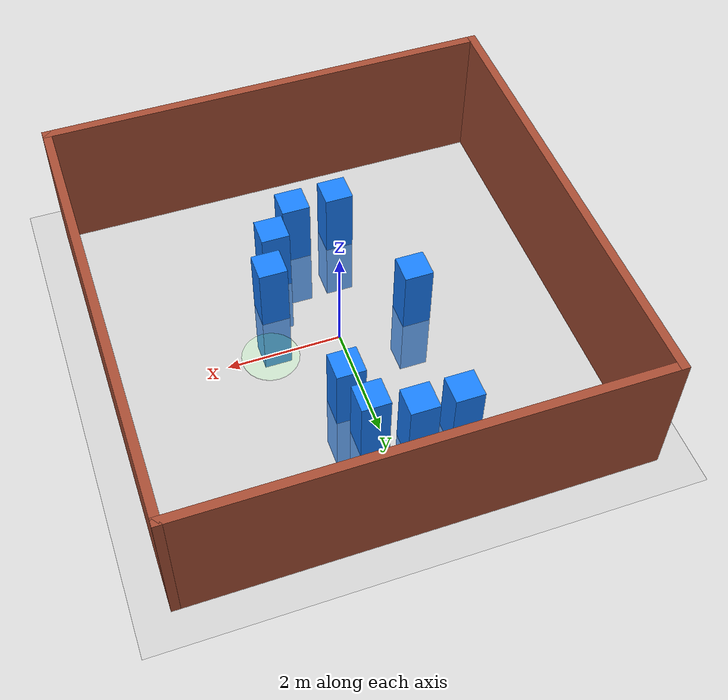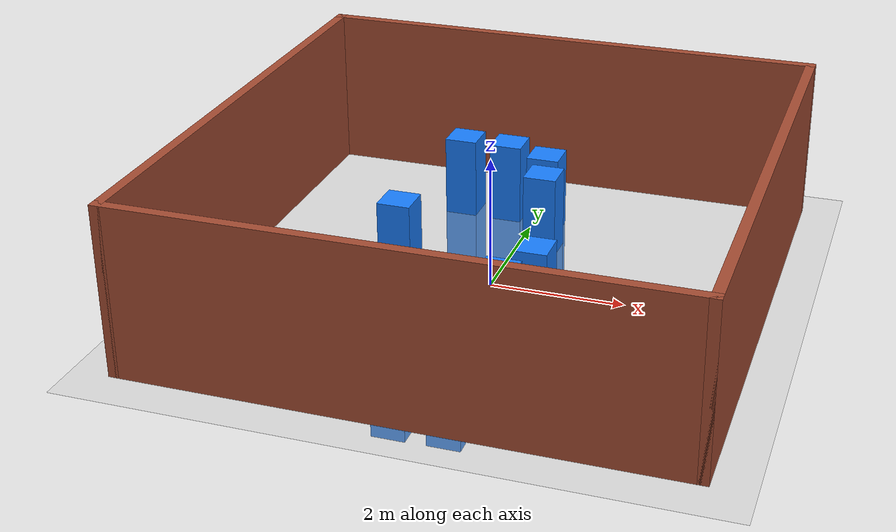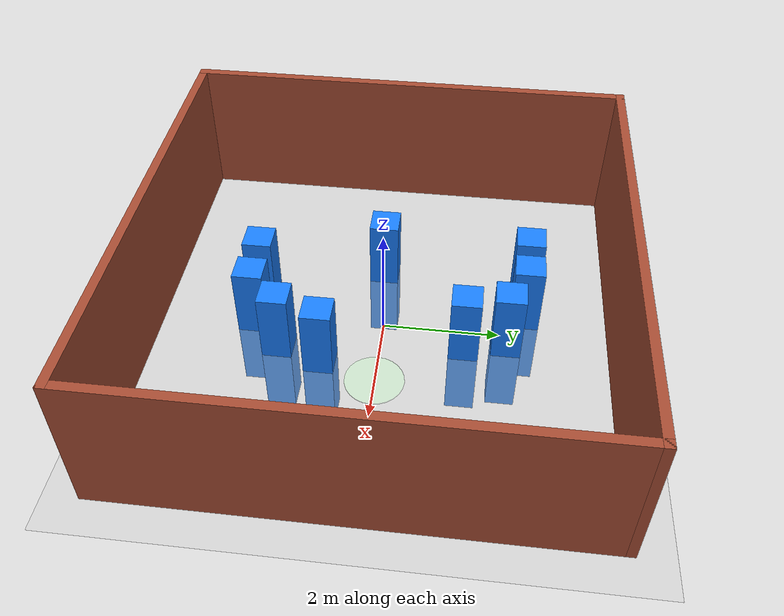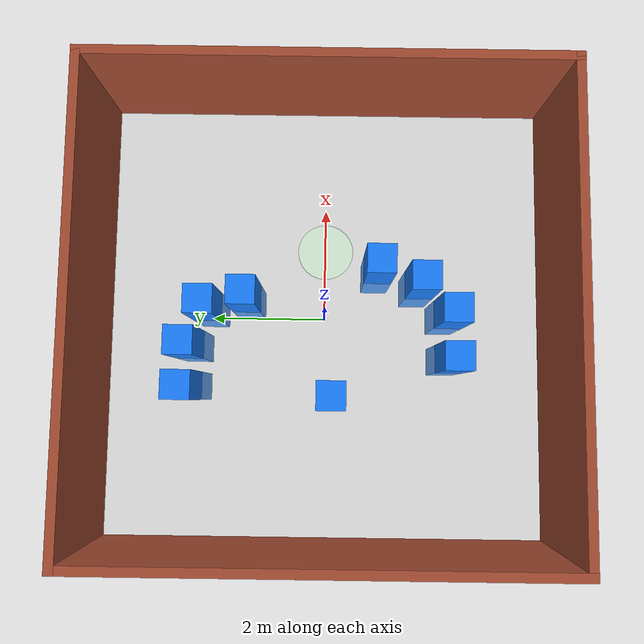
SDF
<?xml version="1.0" ?>
<sdf version='1.6'>
  <world name='default'>
    <light name='sun' type='directional'>
      <cast_shadows>1</cast_shadows>
      <pose frame=''>0 0 10 0 -0 0</pose>
      <diffuse>0.8 0.8 0.8 1</diffuse>
      <specular>0.2 0.2 0.2 1</specular>
      <attenuation>
        <range>1000</range>
        <constant>0.9</constant>
        <linear>0.01</linear>
        <quadratic>0.001</quadratic>
      </attenuation>
      <direction>-0.5 0.1 -0.9</direction>
    </light>
    <model name='ground_plane'>
      <static>1</static>
      <link name='link'>
        <collision name='collision'>
          <geometry>
            <plane>
              <normal>0 0 1</normal>
              <size>100 100</size>
            </plane>
          </geometry>
          <surface>
            <contact>
              <collide_bitmask>65535</collide_bitmask>
              <ode/>
            </contact>
            <friction>
              <ode>
                <mu>100</mu>
                <mu2>50</mu2>
              </ode>
              <torsional>
                <ode/>
              </torsional>
            </friction>
            <bounce/>
          </surface>
          <max_contacts>10</max_contacts>
        </collision>
        <visual name='visual'>
          <cast_shadows>0</cast_shadows>
          <geometry>
            <plane>
              <normal>0 0 1</normal>
              <size>100 100</size>
            </plane>
          </geometry>
          <material>
            <script>
              <uri>file://media/materials/scripts/gazebo.material</uri>
              <name>Gazebo/Grey</name>
            </script>
          </material>
        </visual>
        <self_collide>0</self_collide>
        <enable_wind>0</enable_wind>
        <kinematic>0</kinematic>
      </link>
    </model>
    <gravity>0 0 -9.8</gravity>
    <magnetic_field>6e-06 2.3e-05 -4.2e-05</magnetic_field>
    <atmosphere type='adiabatic'/>
    <physics name='default_physics' default='0' type='ode'>
      <max_step_size>0.001</max_step_size>
      <real_time_factor>1</real_time_factor>
      <real_time_update_rate>1000</real_time_update_rate>
    </physics>
    <scene>
      <ambient>0.4 0.4 0.4 1</ambient>
      <background>0.7 0.7 0.7 1</background>
      <shadows>1</shadows>
    </scene>
    <wind/>
    <spherical_coordinates>
      <surface_model>EARTH_WGS84</surface_model>
      <latitude_deg>0</latitude_deg>
      <longitude_deg>0</longitude_deg>
      <elevation>0</elevation>
      <heading_deg>0</heading_deg>
    </spherical_coordinates>
    <model name='benchmark2'>
      <pose frame=''>0 0 0 0 -0 0</pose>
      <link name='Wall_0'>
        <collision name='Wall_0_Collision'>
          <geometry>
            <box>
              <size>8 0.15 2.5</size>
            </box>
          </geometry>
          <pose frame=''>0 0 1.25 0 -0 0</pose>
          <max_contacts>10</max_contacts>
          <surface>
            <contact>
              <ode/>
            </contact>
            <bounce/>
            <friction>
              <torsional>
                <ode/>
              </torsional>
              <ode/>
            </friction>
          </surface>
        </collision>
        <visual name='Wall_0_Visual'>
          <pose frame=''>0 0 1.25 0 -0 0</pose>
          <geometry>
            <box>
              <size>8 0.15 2.5</size>
            </box>
          </geometry>
          <material>
            <script>
              <uri>file://media/materials/scripts/gazebo.material</uri>
              <name>Gazebo/Bricks</name>
            </script>
            <ambient>1 1 1 1</ambient>
          </material>
          <meta>
            <layer>0</layer>
          </meta>
        </visual>
        <pose frame=''>-3.925 0 0 0 -0 -1.5708</pose>
        <self_collide>0</self_collide>
        <enable_wind>0</enable_wind>
        <kinematic>0</kinematic>
      </link>
      <link name='Wall_1'>
        <collision name='Wall_1_Collision'>
          <geometry>
            <box>
              <size>8 0.15 2.5</size>
            </box>
          </geometry>
          <pose frame=''>0 0 1.25 0 -0 0</pose>
          <max_contacts>10</max_contacts>
          <surface>
            <contact>
              <ode/>
            </contact>
            <bounce/>
            <friction>
              <torsional>
                <ode/>
              </torsional>
              <ode/>
            </friction>
          </surface>
        </collision>
        <visual name='Wall_1_Visual'>
          <pose frame=''>0 0 1.25 0 -0 0</pose>
          <geometry>
            <box>
              <size>8 0.15 2.5</size>
            </box>
          </geometry>
          <material>
            <script>
              <uri>file://media/materials/scripts/gazebo.material</uri>
              <name>Gazebo/Bricks</name>
            </script>
            <ambient>1 1 1 1</ambient>
          </material>
          <meta>
            <layer>0</layer>
          </meta>
        </visual>
        <pose frame=''>0 -3.925 0 0 -0 0</pose>
        <self_collide>0</self_collide>
        <enable_wind>0</enable_wind>
        <kinematic>0</kinematic>
      </link>
      <link name='Wall_2'>
        <collision name='Wall_2_Collision'>
          <geometry>
            <box>
              <size>8 0.15 2.5</size>
            </box>
          </geometry>
          <pose frame=''>0 0 1.25 0 -0 0</pose>
          <max_contacts>10</max_contacts>
          <surface>
            <contact>
              <ode/>
            </contact>
            <bounce/>
            <friction>
              <torsional>
                <ode/>
              </torsional>
              <ode/>
            </friction>
          </surface>
        </collision>
        <visual name='Wall_2_Visual'>
          <pose frame=''>0 0 1.25 0 -0 0</pose>
          <geometry>
            <box>
              <size>8 0.15 2.5</size>
            </box>
          </geometry>
          <material>
            <script>
              <uri>file://media/materials/scripts/gazebo.material</uri>
              <name>Gazebo/Bricks</name>
            </script>
            <ambient>1 1 1 1</ambient>
          </material>
          <meta>
            <layer>0</layer>
          </meta>
        </visual>
        <pose frame=''>3.925 0 0 0 -0 1.5708</pose>
        <self_collide>0</self_collide>
        <enable_wind>0</enable_wind>
        <kinematic>0</kinematic>
      </link>
      <link name='Wall_3'>
        <collision name='Wall_3_Collision'>
          <geometry>
            <box>
              <size>8 0.15 2.5</size>
            </box>
          </geometry>
          <pose frame=''>0 0 1.25 0 -0 0</pose>
          <max_contacts>10</max_contacts>
          <surface>
            <contact>
              <ode/>
            </contact>
            <bounce/>
            <friction>
              <torsional>
                <ode/>
              </torsional>
              <ode/>
            </friction>
          </surface>
        </collision>
        <visual name='Wall_3_Visual'>
          <pose frame=''>0 0 1.25 0 -0 0</pose>
          <geometry>
            <box>
              <size>8 0.15 2.5</size>
            </box>
          </geometry>
          <material>
            <script>
              <uri>file://media/materials/scripts/gazebo.material</uri>
              <name>Gazebo/Bricks</name>
            </script>
            <ambient>1 1 1 1</ambient>
          </material>
          <meta>
            <layer>0</layer>
          </meta>
        </visual>
        <pose frame=''>0 3.925 0 0 -0 3.14159</pose>
        <self_collide>0</self_collide>
        <enable_wind>0</enable_wind>
        <kinematic>0</kinematic>
      </link>
      <static>1</static>
    </model>
    <model name='unit_box'>
      <pose frame=''>-1.21492 2.44747 0 0 -0 0</pose>
      <link name='link'>
        <inertial>
          <mass>1</mass>
          <inertia>
            <ixx>0.166667</ixx>
            <ixy>0</ixy>
            <ixz>0</ixz>
            <iyy>0.166667</iyy>
            <iyz>0</iyz>
            <izz>0.166667</izz>
          </inertia>
          <pose frame=''>0 0 0 0 -0 0</pose>
        </inertial>
        <self_collide>0</self_collide>
        <enable_wind>0</enable_wind>
        <kinematic>0</kinematic>
        <pose frame=''>0 0 0 0 -0 0</pose>
        <gravity>1</gravity>
        <visual name='visual'>
          <geometry>
            <box>
              <size>0.5 0.5 2.5</size>
            </box>
          </geometry>
          <material>
            <script>
              <name>Gazebo/Grey</name>
              <uri>file://media/materials/scripts/gazebo.material</uri>
            </script>
            <shader type='pixel'>
              <normal_map>__default__</normal_map>
            </shader>
            <ambient>0.3 0.3 1 1</ambient>
            <diffuse>0.1 0.5 1 1</diffuse>
            <specular>0.1 0.1 1 1</specular>
            <emissive>0.1 0.1 1 1</emissive>
          </material>
          <pose frame=''>0 0 0 0 -0 0</pose>
          <transparency>0</transparency>
          <cast_shadows>1</cast_shadows>
        </visual>
        <collision name='collision'>
          <laser_retro>0</laser_retro>
          <max_contacts>10</max_contacts>
          <pose frame=''>0 0 0 0 -0 0</pose>
          <geometry>
            <box>
              <size>0.5 0.5 2.5</size>
            </box>
          </geometry>
          <surface>
            <friction>
              <ode>
                <mu>1</mu>
                <mu2>1</mu2>
                <fdir1>0 0 0</fdir1>
                <slip1>0</slip1>
                <slip2>0</slip2>
              </ode>
              <torsional>
                <coefficient>1</coefficient>
                <patch_radius>0</patch_radius>
                <surface_radius>0</surface_radius>
                <use_patch_radius>1</use_patch_radius>
                <ode>
                  <slip>0</slip>
                </ode>
              </torsional>
            </friction>
            <bounce>
              <restitution_coefficient>0</restitution_coefficient>
              <threshold>1e+06</threshold>
            </bounce>
            <contact>
              <collide_without_contact>0</collide_without_contact>
              <collide_without_contact_bitmask>1</collide_without_contact_bitmask>
              <collide_bitmask>1</collide_bitmask>
              <ode>
                <soft_cfm>0</soft_cfm>
                <soft_erp>0.2</soft_erp>
                <kp>1e+13</kp>
                <kd>1</kd>
                <max_vel>0.01</max_vel>
                <min_depth>0</min_depth>
              </ode>
              <bullet>
                <split_impulse>1</split_impulse>
                <split_impulse_penetration_threshold>-0.01</split_impulse_penetration_threshold>
                <soft_cfm>0</soft_cfm>
                <soft_erp>0.2</soft_erp>
                <kp>1e+13</kp>
                <kd>1</kd>
              </bullet>
            </contact>
          </surface>
        </collision>
      </link>
      <static>0</static>
      <allow_auto_disable>1</allow_auto_disable>
      <pose frame=''>-1.21492 1.94747 0 0 -0 0</pose>
    </model>
    <model name='unit_box_clone'>
      <pose frame=''>-0.474327 2.43137 0 0 -0 0</pose>
      <link name='link'>
        <inertial>
          <mass>1</mass>
          <inertia>
            <ixx>0.166667</ixx>
            <ixy>0</ixy>
            <ixz>0</ixz>
            <iyy>0.166667</iyy>
            <iyz>0</iyz>
            <izz>0.166667</izz>
          </inertia>
          <pose frame=''>0 0 0 0 -0 0</pose>
        </inertial>
        <self_collide>0</self_collide>
        <enable_wind>0</enable_wind>
        <kinematic>0</kinematic>
        <pose frame=''>0 0 0 0 -0 0</pose>
        <gravity>1</gravity>
        <visual name='visual'>
          <geometry>
            <box>
              <size>0.5 0.5 2.5</size>
            </box>
          </geometry>
          <material>
            <script>
              <name>Gazebo/Grey</name>
              <uri>file://media/materials/scripts/gazebo.material</uri>
            </script>
            <shader type='pixel'>
              <normal_map>__default__</normal_map>
            </shader>
            <ambient>0.3 0.3 1 1</ambient>
            <diffuse>0.1 0.5 1 1</diffuse>
            <specular>0.1 0.1 1 1</specular>
            <emissive>0.1 0.1 1 1</emissive>
          </material>
          <pose frame=''>0 0 0 0 -0 0</pose>
          <transparency>0</transparency>
          <cast_shadows>1</cast_shadows>
        </visual>
        <collision name='collision'>
          <laser_retro>0</laser_retro>
          <max_contacts>10</max_contacts>
          <pose frame=''>0 0 0 0 -0 0</pose>
          <geometry>
            <box>
              <size>0.5 0.5 2.5</size>
            </box>
          </geometry>
          <surface>
            <friction>
              <ode>
                <mu>1</mu>
                <mu2>1</mu2>
                <fdir1>0 0 0</fdir1>
                <slip1>0</slip1>
                <slip2>0</slip2>
              </ode>
              <torsional>
                <coefficient>1</coefficient>
                <patch_radius>0</patch_radius>
                <surface_radius>0</surface_radius>
                <use_patch_radius>1</use_patch_radius>
                <ode>
                  <slip>0</slip>
                </ode>
              </torsional>
            </friction>
            <bounce>
              <restitution_coefficient>0</restitution_coefficient>
              <threshold>1e+06</threshold>
            </bounce>
            <contact>
              <collide_without_contact>0</collide_without_contact>
              <collide_without_contact_bitmask>1</collide_without_contact_bitmask>
              <collide_bitmask>1</collide_bitmask>
              <ode>
                <soft_cfm>0</soft_cfm>
                <soft_erp>0.2</soft_erp>
                <kp>1e+13</kp>
                <kd>1</kd>
                <max_vel>0.01</max_vel>
                <min_depth>0</min_depth>
              </ode>
              <bullet>
                <split_impulse>1</split_impulse>
                <split_impulse_penetration_threshold>-0.01</split_impulse_penetration_threshold>
                <soft_cfm>0</soft_cfm>
                <soft_erp>0.2</soft_erp>
                <kp>1e+13</kp>
                <kd>1</kd>
              </bullet>
            </contact>
          </surface>
        </collision>
      </link>
      <static>0</static>
      <allow_auto_disable>1</allow_auto_disable>
      <pose frame=''>-0.474327 1.93137 0 0 -0 0</pose>
    </model>
    <model name='unit_box_clone_0'>
      <pose frame=''>0.217968 2.12547 0 0 -0 0</pose>
      <link name='link'>
        <inertial>
          <mass>1</mass>
          <inertia>
            <ixx>0.166667</ixx>
            <ixy>0</ixy>
            <ixz>0</ixz>
            <iyy>0.166667</iyy>
            <iyz>0</iyz>
            <izz>0.166667</izz>
          </inertia>
          <pose frame=''>0 0 0 0 -0 0</pose>
        </inertial>
        <self_collide>0</self_collide>
        <enable_wind>0</enable_wind>
        <kinematic>0</kinematic>
        <pose frame=''>0 0 0 0 -0 0</pose>
        <gravity>1</gravity>
        <visual name='visual'>
          <geometry>
            <box>
              <size>0.5 0.5 2.5</size>
            </box>
          </geometry>
          <material>
            <script>
              <name>Gazebo/Grey</name>
              <uri>file://media/materials/scripts/gazebo.material</uri>
            </script>
            <shader type='pixel'>
              <normal_map>__default__</normal_map>
            </shader>
            <ambient>0.3 0.3 1 1</ambient>
            <diffuse>0.1 0.5 1 1</diffuse>
            <specular>0.1 0.1 1 1</specular>
            <emissive>0.1 0.1 1 1</emissive>
          </material>
          <pose frame=''>0 0 0 0 -0 0</pose>
          <transparency>0</transparency>
          <cast_shadows>1</cast_shadows>
        </visual>
        <collision name='collision'>
          <laser_retro>0</laser_retro>
          <max_contacts>10</max_contacts>
          <pose frame=''>0 0 0 0 -0 0</pose>
          <geometry>
            <box>
              <size>0.5 0.5 2.5</size>
            </box>
          </geometry>
          <surface>
            <friction>
              <ode>
                <mu>1</mu>
                <mu2>1</mu2>
                <fdir1>0 0 0</fdir1>
                <slip1>0</slip1>
                <slip2>0</slip2>
              </ode>
              <torsional>
                <coefficient>1</coefficient>
                <patch_radius>0</patch_radius>
                <surface_radius>0</surface_radius>
                <use_patch_radius>1</use_patch_radius>
                <ode>
                  <slip>0</slip>
                </ode>
              </torsional>
            </friction>
            <bounce>
              <restitution_coefficient>0</restitution_coefficient>
              <threshold>1e+06</threshold>
            </bounce>
            <contact>
              <collide_without_contact>0</collide_without_contact>
              <collide_without_contact_bitmask>1</collide_without_contact_bitmask>
              <collide_bitmask>1</collide_bitmask>
              <ode>
                <soft_cfm>0</soft_cfm>
                <soft_erp>0.2</soft_erp>
                <kp>1e+13</kp>
                <kd>1</kd>
                <max_vel>0.01</max_vel>
                <min_depth>0</min_depth>
              </ode>
              <bullet>
                <split_impulse>1</split_impulse>
                <split_impulse_penetration_threshold>-0.01</split_impulse_penetration_threshold>
                <soft_cfm>0</soft_cfm>
                <soft_erp>0.2</soft_erp>
                <kp>1e+13</kp>
                <kd>1</kd>
              </bullet>
            </contact>
          </surface>
        </collision>
      </link>
      <static>0</static>
      <allow_auto_disable>1</allow_auto_disable>
      <pose frame=''>0.217968 1.62547 0 0 -0 0</pose>
    </model>
    <model name='unit_box_clone_1'>
      <pose frame=''>0.378967 1.417073 0 0 -0 0</pose>
      <link name='link'>
        <inertial>
          <mass>1</mass>
          <inertia>
            <ixx>0.166667</ixx>
            <ixy>0</ixy>
            <ixz>0</ixz>
            <iyy>0.166667</iyy>
            <iyz>0</iyz>
            <izz>0.166667</izz>
          </inertia>
          <pose frame=''>0 0 0 0 -0 0</pose>
        </inertial>
        <self_collide>0</self_collide>
        <enable_wind>0</enable_wind>
        <kinematic>0</kinematic>
        <pose frame=''>0 0 0 0 -0 0</pose>
        <gravity>1</gravity>
        <visual name='visual'>
          <geometry>
            <box>
              <size>0.5 0.5 2.5</size>
            </box>
          </geometry>
          <material>
            <script>
              <name>Gazebo/Grey</name>
              <uri>file://media/materials/scripts/gazebo.material</uri>
            </script>
            <shader type='pixel'>
              <normal_map>__default__</normal_map>
            </shader>
            <ambient>0.3 0.3 1 1</ambient>
            <diffuse>0.1 0.5 1 1</diffuse>
            <specular>0.1 0.1 1 1</specular>
            <emissive>0.1 0.1 1 1</emissive>
          </material>
          <pose frame=''>0 0 0 0 -0 0</pose>
          <transparency>0</transparency>
          <cast_shadows>1</cast_shadows>
        </visual>
        <collision name='collision'>
          <laser_retro>0</laser_retro>
          <max_contacts>10</max_contacts>
          <pose frame=''>0 0 0 0 -0 0</pose>
          <geometry>
            <box>
              <size>0.5 0.5 2.5</size>
            </box>
          </geometry>
          <surface>
            <friction>
              <ode>
                <mu>1</mu>
                <mu2>1</mu2>
                <fdir1>0 0 0</fdir1>
                <slip1>0</slip1>
                <slip2>0</slip2>
              </ode>
              <torsional>
                <coefficient>1</coefficient>
                <patch_radius>0</patch_radius>
                <surface_radius>0</surface_radius>
                <use_patch_radius>1</use_patch_radius>
                <ode>
                  <slip>0</slip>
                </ode>
              </torsional>
            </friction>
            <bounce>
              <restitution_coefficient>0</restitution_coefficient>
              <threshold>1e+06</threshold>
            </bounce>
            <contact>
              <collide_without_contact>0</collide_without_contact>
              <collide_without_contact_bitmask>1</collide_without_contact_bitmask>
              <collide_bitmask>1</collide_bitmask>
              <ode>
                <soft_cfm>0</soft_cfm>
                <soft_erp>0.2</soft_erp>
                <kp>1e+13</kp>
                <kd>1</kd>
                <max_vel>0.01</max_vel>
                <min_depth>0</min_depth>
              </ode>
              <bullet>
                <split_impulse>1</split_impulse>
                <split_impulse_penetration_threshold>-0.01</split_impulse_penetration_threshold>
                <soft_cfm>0</soft_cfm>
                <soft_erp>0.2</soft_erp>
                <kp>1e+13</kp>
                <kd>1</kd>
              </bullet>
            </contact>
          </surface>
        </collision>
      </link>
      <static>0</static>
      <allow_auto_disable>1</allow_auto_disable>
      <pose frame=''>0.378967 0.917073 0 0 -0 0</pose>
    </model>
    <model name='unit_box_clone_2'>
      <pose frame=''>-1.36572 -0.119218 0 0 -0 0</pose>
      <link name='link'>
        <inertial>
          <mass>1</mass>
          <inertia>
            <ixx>0.166667</ixx>
            <ixy>0</ixy>
            <ixz>0</ixz>
            <iyy>0.166667</iyy>
            <iyz>0</iyz>
            <izz>0.166667</izz>
          </inertia>
          <pose frame=''>0 0 0 0 -0 0</pose>
        </inertial>
        <self_collide>0</self_collide>
        <enable_wind>0</enable_wind>
        <kinematic>0</kinematic>
        <pose frame=''>0 0 0 0 -0 0</pose>
        <gravity>1</gravity>
        <visual name='visual'>
          <geometry>
            <box>
              <size>0.5 0.5 2.5</size>
            </box>
          </geometry>
          <material>
            <script>
              <name>Gazebo/Grey</name>
              <uri>file://media/materials/scripts/gazebo.material</uri>
            </script>
            <shader type='pixel'>
              <normal_map>__default__</normal_map>
            </shader>
            <ambient>0.3 0.3 1 1</ambient>
            <diffuse>0.1 0.5 1 1</diffuse>
            <specular>0.1 0.1 1 1</specular>
            <emissive>0.1 0.1 1 1</emissive>
          </material>
          <pose frame=''>0 0 0 0 -0 0</pose>
          <transparency>0</transparency>
          <cast_shadows>1</cast_shadows>
        </visual>
        <collision name='collision'>
          <laser_retro>0</laser_retro>
          <max_contacts>10</max_contacts>
          <pose frame=''>0 0 0 0 -0 0</pose>
          <geometry>
            <box>
              <size>0.5 0.5 2.5</size>
            </box>
          </geometry>
          <surface>
            <friction>
              <ode>
                <mu>1</mu>
                <mu2>1</mu2>
                <fdir1>0 0 0</fdir1>
                <slip1>0</slip1>
                <slip2>0</slip2>
              </ode>
              <torsional>
                <coefficient>1</coefficient>
                <patch_radius>0</patch_radius>
                <surface_radius>0</surface_radius>
                <use_patch_radius>1</use_patch_radius>
                <ode>
                  <slip>0</slip>
                </ode>
              </torsional>
            </friction>
            <bounce>
              <restitution_coefficient>0</restitution_coefficient>
              <threshold>1e+06</threshold>
            </bounce>
            <contact>
              <collide_without_contact>0</collide_without_contact>
              <collide_without_contact_bitmask>1</collide_without_contact_bitmask>
              <collide_bitmask>1</collide_bitmask>
              <ode>
                <soft_cfm>0</soft_cfm>
                <soft_erp>0.2</soft_erp>
                <kp>1e+13</kp>
                <kd>1</kd>
                <max_vel>0.01</max_vel>
                <min_depth>0</min_depth>
              </ode>
              <bullet>
                <split_impulse>1</split_impulse>
                <split_impulse_penetration_threshold>-0.01</split_impulse_penetration_threshold>
                <soft_cfm>0</soft_cfm>
                <soft_erp>0.2</soft_erp>
                <kp>1e+13</kp>
                <kd>1</kd>
              </bullet>
            </contact>
          </surface>
        </collision>
      </link>
      <static>0</static>
      <allow_auto_disable>1</allow_auto_disable>
      <pose frame=''>-1.66572 -0.419218 0 0 -0 0</pose>
    </model>
    <model name='unit_box_clone_3'>
      <pose frame=''>-0.680226 -2.24871 0 0 -0 0</pose>
      <link name='link'>
        <inertial>
          <mass>1</mass>
          <inertia>
            <ixx>0.166667</ixx>
            <ixy>0</ixy>
            <ixz>0</ixz>
            <iyy>0.166667</iyy>
            <iyz>0</iyz>
            <izz>0.166667</izz>
          </inertia>
          <pose frame=''>0 0 0 0 -0 0</pose>
        </inertial>
        <self_collide>0</self_collide>
        <enable_wind>0</enable_wind>
        <kinematic>0</kinematic>
        <pose frame=''>0 0 0 0 -0 0</pose>
        <gravity>1</gravity>
        <visual name='visual'>
          <geometry>
            <box>
              <size>0.5 0.5 2.5</size>
            </box>
          </geometry>
          <material>
            <script>
              <name>Gazebo/Grey</name>
              <uri>file://media/materials/scripts/gazebo.material</uri>
            </script>
            <shader type='pixel'>
              <normal_map>__default__</normal_map>
            </shader>
            <ambient>0.3 0.3 1 1</ambient>
            <diffuse>0.1 0.5 1 1</diffuse>
            <specular>0.1 0.1 1 1</specular>
            <emissive>0.1 0.1 1 1</emissive>
          </material>
          <pose frame=''>0 0 0 0 -0 0</pose>
          <transparency>0</transparency>
          <cast_shadows>1</cast_shadows>
        </visual>
        <collision name='collision'>
          <laser_retro>0</laser_retro>
          <max_contacts>10</max_contacts>
          <pose frame=''>0 0 0 0 -0 0</pose>
          <geometry>
            <box>
              <size>0.5 0.5 2.5</size>
            </box>
          </geometry>
          <surface>
            <friction>
              <ode>
                <mu>1</mu>
                <mu2>1</mu2>
                <fdir1>0 0 0</fdir1>
                <slip1>0</slip1>
                <slip2>0</slip2>
              </ode>
              <torsional>
                <coefficient>1</coefficient>
                <patch_radius>0</patch_radius>
                <surface_radius>0</surface_radius>
                <use_patch_radius>1</use_patch_radius>
                <ode>
                  <slip>0</slip>
                </ode>
              </torsional>
            </friction>
            <bounce>
              <restitution_coefficient>0</restitution_coefficient>
              <threshold>1e+06</threshold>
            </bounce>
            <contact>
              <collide_without_contact>0</collide_without_contact>
              <collide_without_contact_bitmask>1</collide_without_contact_bitmask>
              <collide_bitmask>1</collide_bitmask>
              <ode>
                <soft_cfm>0</soft_cfm>
                <soft_erp>0.2</soft_erp>
                <kp>1e+13</kp>
                <kd>1</kd>
                <max_vel>0.01</max_vel>
                <min_depth>0</min_depth>
              </ode>
              <bullet>
                <split_impulse>1</split_impulse>
                <split_impulse_penetration_threshold>-0.01</split_impulse_penetration_threshold>
                <soft_cfm>0</soft_cfm>
                <soft_erp>0.2</soft_erp>
                <kp>1e+13</kp>
                <kd>1</kd>
              </bullet>
            </contact>
          </surface>
        </collision>
      </link>
      <static>0</static>
      <allow_auto_disable>1</allow_auto_disable>
      <pose frame=''>-0.780226 -1.94871 0 0 -0 0</pose>
    </model>
    <model name='unit_box_clone_4'>
      <pose frame=''>0.124769 -2.23261 0 0 -0 0</pose>
      <link name='link'>
        <inertial>
          <mass>1</mass>
          <inertia>
            <ixx>0.166667</ixx>
            <ixy>0</ixy>
            <ixz>0</ixz>
            <iyy>0.166667</iyy>
            <iyz>0</iyz>
            <izz>0.166667</izz>
          </inertia>
          <pose frame=''>0 0 0 0 -0 0</pose>
        </inertial>
        <self_collide>0</self_collide>
        <enable_wind>0</enable_wind>
        <kinematic>0</kinematic>
        <pose frame=''>0 0 0 0 -0 0</pose>
        <gravity>1</gravity>
        <visual name='visual'>
          <geometry>
            <box>
              <size>0.5 0.5 2.5</size>
            </box>
          </geometry>
          <material>
            <script>
              <name>Gazebo/Grey</name>
              <uri>file://media/materials/scripts/gazebo.material</uri>
            </script>
            <shader type='pixel'>
              <normal_map>__default__</normal_map>
            </shader>
            <ambient>0.3 0.3 1 1</ambient>
            <diffuse>0.1 0.5 1 1</diffuse>
            <specular>0.1 0.1 1 1</specular>
            <emissive>0.1 0.1 1 1</emissive>
          </material>
          <pose frame=''>0 0 0 0 -0 0</pose>
          <transparency>0</transparency>
          <cast_shadows>1</cast_shadows>
        </visual>
        <collision name='collision'>
          <laser_retro>0</laser_retro>
          <max_contacts>10</max_contacts>
          <pose frame=''>0 0 0 0 -0 0</pose>
          <geometry>
            <box>
              <size>0.5 0.5 2.5</size>
            </box>
          </geometry>
          <surface>
            <friction>
              <ode>
                <mu>1</mu>
                <mu2>1</mu2>
                <fdir1>0 0 0</fdir1>
                <slip1>0</slip1>
                <slip2>0</slip2>
              </ode>
              <torsional>
                <coefficient>1</coefficient>
                <patch_radius>0</patch_radius>
                <surface_radius>0</surface_radius>
                <use_patch_radius>1</use_patch_radius>
                <ode>
                  <slip>0</slip>
                </ode>
              </torsional>
            </friction>
            <bounce>
              <restitution_coefficient>0</restitution_coefficient>
              <threshold>1e+06</threshold>
            </bounce>
            <contact>
              <collide_without_contact>0</collide_without_contact>
              <collide_without_contact_bitmask>1</collide_without_contact_bitmask>
              <collide_bitmask>1</collide_bitmask>
              <ode>
                <soft_cfm>0</soft_cfm>
                <soft_erp>0.2</soft_erp>
                <kp>1e+13</kp>
                <kd>1</kd>
                <max_vel>0.01</max_vel>
                <min_depth>0</min_depth>
              </ode>
              <bullet>
                <split_impulse>1</split_impulse>
                <split_impulse_penetration_threshold>-0.01</split_impulse_penetration_threshold>
                <soft_cfm>0</soft_cfm>
                <soft_erp>0.2</soft_erp>
                <kp>1e+13</kp>
                <kd>1</kd>
              </bullet>
            </contact>
          </surface>
        </collision>
      </link>
      <static>0</static>
      <allow_auto_disable>1</allow_auto_disable>
      <pose frame=''>0.024769 -1.93261 0 0 -0 0</pose>
    </model>
    <model name='unit_box_clone_5'>
      <pose frame=''>0.661960 -1.70571 0 0 -0 0</pose>
      <link name='link'>
        <inertial>
          <mass>1</mass>
          <inertia>
            <ixx>0.166667</ixx>
            <ixy>0</ixy>
            <ixz>0</ixz>
            <iyy>0.166667</iyy>
            <iyz>0</iyz>
            <izz>0.166667</izz>
          </inertia>
          <pose frame=''>0 0 0 0 -0 0</pose>
        </inertial>
        <self_collide>0</self_collide>
        <enable_wind>0</enable_wind>
        <kinematic>0</kinematic>
        <pose frame=''>0 0 0 0 -0 0</pose>
        <gravity>1</gravity>
        <visual name='visual'>
          <geometry>
            <box>
              <size>0.5 0.5 2.5</size>
            </box>
          </geometry>
          <material>
            <script>
              <name>Gazebo/Grey</name>
              <uri>file://media/materials/scripts/gazebo.material</uri>
            </script>
            <shader type='pixel'>
              <normal_map>__default__</normal_map>
            </shader>
            <ambient>0.3 0.3 1 1</ambient>
            <diffuse>0.1 0.5 1 1</diffuse>
            <specular>0.1 0.1 1 1</specular>
            <emissive>0.1 0.1 1 1</emissive>
          </material>
          <pose frame=''>0 0 0 0 -0 0</pose>
          <transparency>0</transparency>
          <cast_shadows>1</cast_shadows>
        </visual>
        <collision name='collision'>
          <laser_retro>0</laser_retro>
          <max_contacts>10</max_contacts>
          <pose frame=''>0 0 0 0 -0 0</pose>
          <geometry>
            <box>
              <size>0.5 0.5 2.5</size>
            </box>
          </geometry>
          <surface>
            <friction>
              <ode>
                <mu>1</mu>
                <mu2>1</mu2>
                <fdir1>0 0 0</fdir1>
                <slip1>0</slip1>
                <slip2>0</slip2>
              </ode>
              <torsional>
                <coefficient>1</coefficient>
                <patch_radius>0</patch_radius>
                <surface_radius>0</surface_radius>
                <use_patch_radius>1</use_patch_radius>
                <ode>
                  <slip>0</slip>
                </ode>
              </torsional>
            </friction>
            <bounce>
              <restitution_coefficient>0</restitution_coefficient>
              <threshold>1e+06</threshold>
            </bounce>
            <contact>
              <collide_without_contact>0</collide_without_contact>
              <collide_without_contact_bitmask>1</collide_without_contact_bitmask>
              <collide_bitmask>1</collide_bitmask>
              <ode>
                <soft_cfm>0</soft_cfm>
                <soft_erp>0.2</soft_erp>
                <kp>1e+13</kp>
                <kd>1</kd>
                <max_vel>0.01</max_vel>
                <min_depth>0</min_depth>
              </ode>
              <bullet>
                <split_impulse>1</split_impulse>
                <split_impulse_penetration_threshold>-0.01</split_impulse_penetration_threshold>
                <soft_cfm>0</soft_cfm>
                <soft_erp>0.2</soft_erp>
                <kp>1e+13</kp>
                <kd>1</kd>
              </bullet>
            </contact>
          </surface>
        </collision>
      </link>
      <static>0</static>
      <allow_auto_disable>1</allow_auto_disable>
      <pose frame=''>0.861964 -1.46571 0 0 -0 0</pose>
    </model>
    <model name='unit_box_clone_6'>
      <pose frame=''>0.934182 -0.952916 0 0 -0 0</pose>
      <link name='link'>
        <inertial>
          <mass>1</mass>
          <inertia>
            <ixx>0.166667</ixx>
            <ixy>0</ixy>
            <ixz>0</ixz>
            <iyy>0.166667</iyy>
            <iyz>0</iyz>
            <izz>0.166667</izz>
          </inertia>
          <pose frame=''>0 0 0 0 -0 0</pose>
        </inertial>
        <self_collide>0</self_collide>
        <enable_wind>0</enable_wind>
        <kinematic>0</kinematic>
        <pose frame=''>0 0 0 0 -0 0</pose>
        <gravity>1</gravity>
        <visual name='visual'>
          <geometry>
            <box>
              <size>0.5 0.5 2.5</size>
            </box>
          </geometry>
          <material>
            <script>
              <name>Gazebo/Grey</name>
              <uri>file://media/materials/scripts/gazebo.material</uri>
            </script>
            <shader type='pixel'>
              <normal_map>__default__</normal_map>
            </shader>
            <ambient>0.3 0.3 1 1</ambient>
            <diffuse>0.1 0.5 1 1</diffuse>
            <specular>0.1 0.1 1 1</specular>
            <emissive>0.1 0.1 1 1</emissive>
          </material>
          <pose frame=''>0 0 0 0 -0 0</pose>
          <transparency>0</transparency>
          <cast_shadows>1</cast_shadows>
        </visual>
        <collision name='collision'>
          <laser_retro>0</laser_retro>
          <max_contacts>10</max_contacts>
          <pose frame=''>0 0 0 0 -0 0</pose>
          <geometry>
            <box>
              <size>0.5 0.5 2.5</size>
            </box>
          </geometry>
          <surface>
            <friction>
              <ode>
                <mu>1</mu>
                <mu2>1</mu2>
                <fdir1>0 0 0</fdir1>
                <slip1>0</slip1>
                <slip2>0</slip2>
              </ode>
              <torsional>
                <coefficient>1</coefficient>
                <patch_radius>0</patch_radius>
                <surface_radius>0</surface_radius>
                <use_patch_radius>1</use_patch_radius>
                <ode>
                  <slip>0</slip>
                </ode>
              </torsional>
            </friction>
            <bounce>
              <restitution_coefficient>0</restitution_coefficient>
              <threshold>1e+06</threshold>
            </bounce>
            <contact>
              <collide_without_contact>0</collide_without_contact>
              <collide_without_contact_bitmask>1</collide_without_contact_bitmask>
              <collide_bitmask>1</collide_bitmask>
              <ode>
                <soft_cfm>0</soft_cfm>
                <soft_erp>0.2</soft_erp>
                <kp>1e+13</kp>
                <kd>1</kd>
                <max_vel>0.01</max_vel>
                <min_depth>0</min_depth>
              </ode>
              <bullet>
                <split_impulse>1</split_impulse>
                <split_impulse_penetration_threshold>-0.01</split_impulse_penetration_threshold>
                <soft_cfm>0</soft_cfm>
                <soft_erp>0.2</soft_erp>
                <kp>1e+13</kp>
                <kd>1</kd>
              </bullet>
            </contact>
          </surface>
        </collision>
      </link>
      <static>0</static>
      <allow_auto_disable>1</allow_auto_disable>
      <pose frame=''>1.20006 -0.692916 0 0 -0 0</pose>
    </model>
    <model name='spotlight'>
      <link name='link'>
        <inertial>
          <mass>1</mass>
          <inertia>
            <ixx>0.145833</ixx>
            <ixy>0</ixy>
            <ixz>0</ixz>
            <iyy>0.145833</iyy>
            <iyz>0</iyz>
            <izz>0.125</izz>
          </inertia>
          <pose frame=''>0 0 0 0 -0 0</pose>
        </inertial>
        <self_collide>0</self_collide>
        <enable_wind>0</enable_wind>
        <kinematic>0</kinematic>
        <pose frame=''>0 0 0 0 -0 0</pose>
        <gravity>0</gravity>
        <visual name='visual'>
          <geometry>
            <cylinder>
              <radius>0.5</radius>
              <length>0.02</length>
            </cylinder>
          </geometry>
          <material>
            <script>
              <name>Gazebo/Grey</name>
              <uri>file://media/materials/scripts/gazebo.material</uri>
            </script>
            <shader type='pixel'>
              <normal_map>__default__</normal_map>
            </shader>
            <ambient>0.1 1 0.1 1</ambient>
            <diffuse>0.7 1 0.7 1</diffuse>
            <specular>0.01 0.31 0.01 1</specular>
            <emissive>0 0 0 1</emissive>
          </material>
          <pose frame=''>0 0 0 0 -0 0</pose>
          <transparency>0.7</transparency>
          <cast_shadows>1</cast_shadows>
        </visual>
      </link>
      <static>0</static>
      <allow_auto_disable>1</allow_auto_disable>
      <pose frame=''>1.25 0 0 0 0 -0</pose>
      <visibility_flags> 0 </visibility_flags>
    </model>
    <gui fullscreen='0'>
      <camera name='user_camera'>
        <pose frame=''>-0.015481 0.01548 22.7274 3.14159 1.57079 3.14159</pose>
        <view_controller>orbit</view_controller>
        <projection_type>perspective</projection_type>
      </camera>
    </gui>
  </world>
</sdf>
